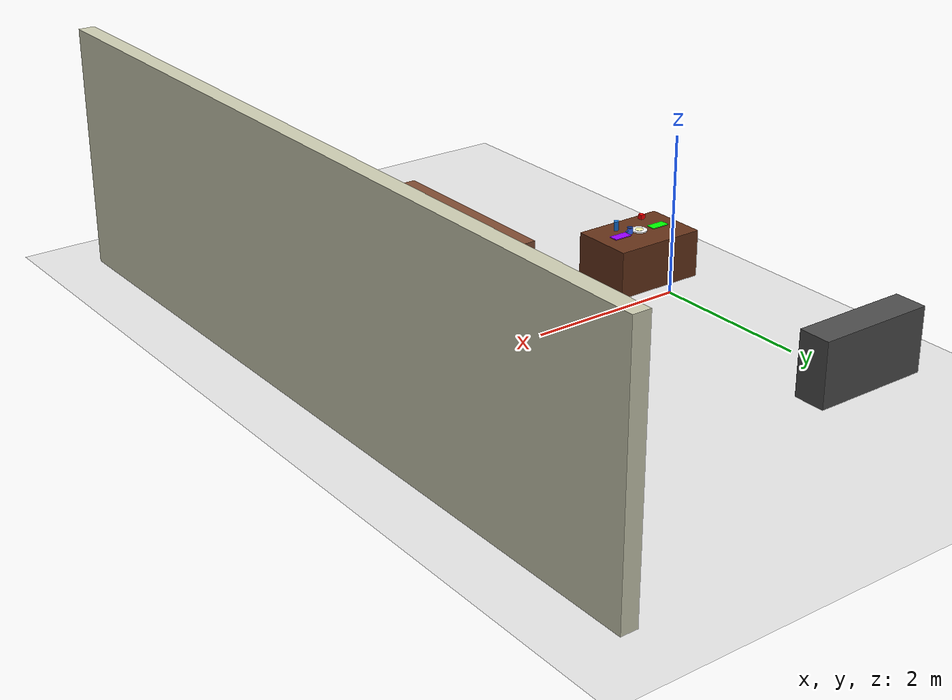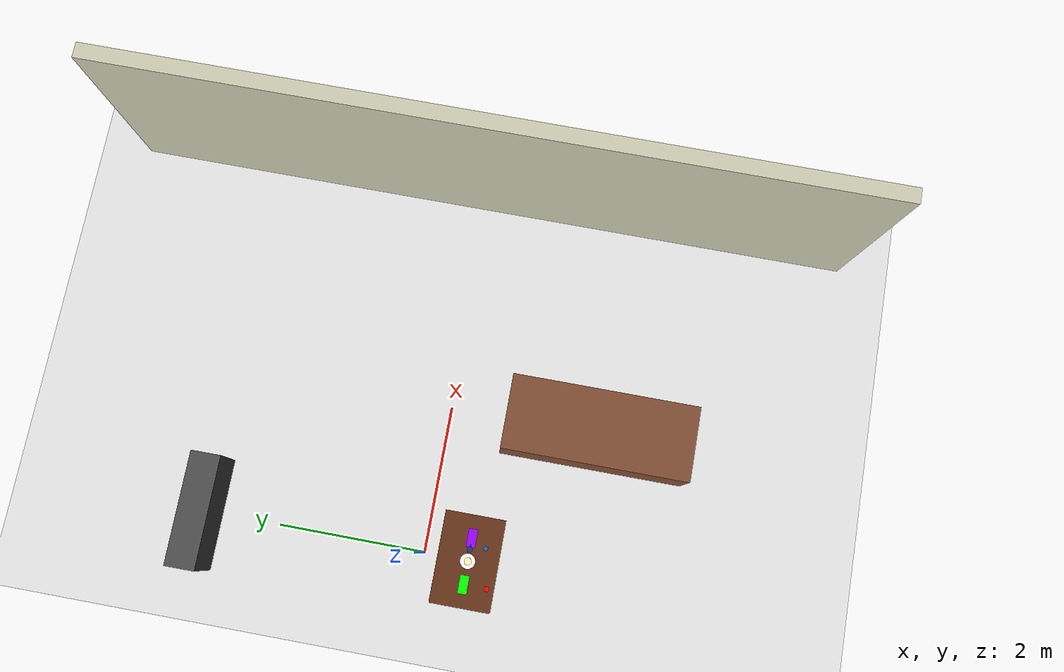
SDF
<?xml version="1.0" ?>
<sdf version="1.7">
  <world name="working_living_room">

    <physics name="1ms" type="ignored">
      <max_step_size>0.001</max_step_size>
      <real_time_factor>1.0</real_time_factor>
    </physics>

    <plugin filename="libgz-sim-physics-system.so" name="gz::sim::systems::Physics"/>
    <plugin filename="libgz-sim-user-commands-system.so" name="gz::sim::systems::UserCommands"/>
    <plugin filename="libgz-sim-scene-broadcaster-system.so" name="gz::sim::systems::SceneBroadcaster"/>

    <light type="directional" name="sun">
      <cast_shadows>true</cast_shadows>
      <pose>0 0 10 0 0 0</pose>
      <diffuse>0.8 0.8 0.8 1</diffuse>
      <specular>0.2 0.2 0.2 1</specular>
      <direction>-0.5 0.1 -0.9</direction>
    </light>

    <!-- 地面 -->
    <model name="ground_plane">
      <static>true</static>
      <link name="link">
        <collision name="collision">
          <geometry>
            <plane>
              <normal>0 0 1</normal>
              <size>20 20</size>
            </plane>
          </geometry>
        </collision>
        <visual name="visual">
          <geometry>
            <plane>
              <normal>0 0 1</normal>
              <size>20 20</size>
            </plane>
          </geometry>
          <material>
            <ambient>0.9 0.9 0.9 1</ambient>
            <diffuse>0.9 0.9 0.9 1</diffuse>
          </material>
        </visual>
      </link>
    </model>

    <!-- 墙壁 -->
    <model name="wall_1">
      <static>true</static>
      <pose>5 0 1.5 0 0 0</pose>
      <link name="wall_link">
        <collision name="wall_collision">
          <geometry>
            <box>
              <size>0.2 10 3</size>
            </box>
          </geometry>
        </collision>
        <visual name="wall_visual">
          <geometry>
            <box>
              <size>0.2 10 3</size>
            </box>
          </geometry>
          <material>
            <ambient>0.8 0.8 0.7 1</ambient>
            <diffuse>0.8 0.8 0.7 1</diffuse>
          </material>
        </visual>
      </link>
    </model>

    <!-- 沙发 -->
    <model name="sofa">
      <static>true</static>
      <pose>2 -2 0.4 0 0 1.57</pose>
      <link name="sofa_link">
        <collision name="sofa_collision">
          <geometry>
            <box>
              <size>2.5 1 0.8</size>
            </box>
          </geometry>
        </collision>
        <visual name="sofa_visual">
          <geometry>
            <box>
              <size>2.5 1 0.8</size>
            </box>
          </geometry>
          <material>
            <ambient>0.5 0.3 0.2 1</ambient>
            <diffuse>0.5 0.3 0.2 1</diffuse>
          </material>
        </visual>
      </link>
    </model>

    <!-- 咖啡桌 -->
    <model name="coffee_table">
      <static>true</static>
      <pose>0 -0.6 0.3 0 0 0</pose>
      <link name="table_link">
        <collision name="table_collision">
          <geometry>
            <box>
              <size>1.2 0.8 0.6</size>
            </box>
          </geometry>
        </collision>
        <visual name="table_visual">
          <geometry>
            <box>
              <size>1.2 0.8 0.6</size>
            </box>
          </geometry>
          <material>
            <ambient>0.4 0.2 0.1 1</ambient>
            <diffuse>0.4 0.2 0.1 1</diffuse>
          </material>
        </visual>
      </link>
    </model>

    <!-- 电视架 -->
    <model name="tv_stand">
      <static>true</static>
      <pose>0 3 0.4 0 0 0</pose>
      <link name="stand_link">
        <collision name="stand_collision">
          <geometry>
            <box>
              <size>1.5 0.4 0.8</size>
            </box>
          </geometry>
        </collision>
        <visual name="stand_visual">
          <geometry>
            <box>
              <size>1.5 0.4 0.8</size>
            </box>
          </geometry>
          <material>
            <ambient>0.3 0.3 0.3 1</ambient>
            <diffuse>0.3 0.3 0.3 1</diffuse>
          </material>
        </visual>
      </link>
    </model>

    <!-- 一些可抓取的物体 -->
    <model name="bottle">
      <pose>0.2 -0.8 0.65 0 0 0</pose>
      <link name="bottle_link">
        <inertial>
          <mass>0.2</mass>
          <inertia>
            <ixx>0.001</ixx>
            <ixy>0</ixy>
            <ixz>0</ixz>
            <iyy>0.001</iyy>
            <iyz>0</iyz>
            <izz>0.0005</izz>
          </inertia>
        </inertial>
        <collision name="bottle_collision">
          <geometry>
            <cylinder>
              <radius>0.03</radius>
              <length>0.15</length>
            </cylinder>
          </geometry>
        </collision>
        <visual name="bottle_visual">
          <geometry>
            <cylinder>
              <radius>0.03</radius>
              <length>0.15</length>
            </cylinder>
          </geometry>
          <material>
            <ambient>0 0.5 1 0.8</ambient>
            <diffuse>0 0.5 1 0.8</diffuse>
          </material>
        </visual>
      </link>
    </model>

    <model name="box">
      <pose>-0.3 -0.9 0.63 0 0 0</pose>
      <link name="box_link">
        <inertial>
          <mass>0.1</mass>
          <inertia>
            <ixx>0.0002</ixx>
            <ixy>0</ixy>
            <ixz>0</ixz>
            <iyy>0.0002</iyy>
            <iyz>0</iyz>
            <izz>0.0002</izz>
          </inertia>
        </inertial>
        <collision name="box_collision">
          <geometry>
            <box>
              <size>0.06 0.06 0.06</size>
            </box>
          </geometry>
        </collision>
        <visual name="box_visual">
          <geometry>
            <box>
              <size>0.06 0.06 0.06</size>
            </box>
          </geometry>
          <material>
            <ambient>1 0 0 1</ambient>
            <diffuse>1 0 0 1</diffuse>
          </material>
        </visual>
      </link>
    </model>

    <!-- 俯视咖啡桌的摄像头 -->
    <model name="over_table_camera">
      <static>true</static>
      <!-- 位置：x=0, y=-0.6, z=1.2，正好在咖啡桌上方，z可根据需要调整高度 -->
      <pose>0 -0.6 2.0 0 1.57 0</pose>
      <link name="camera_link">
        <sensor name="camera_sensor" type="camera">
          <pose>0 0 0 0 0 0</pose>
          <camera>
            <horizontal_fov>1.57</horizontal_fov>
            <image>
              <width>640</width>
              <height>480</height>
              <format>R8G8B8</format>
            </image>
            <clip>
              <near>0.1</near>
              <far>10</far>
            </clip>
          </camera>
          <always_on>1</always_on>
          <update_rate>30</update_rate>
          <visualize>true</visualize>
        </sensor>
      </link>
    </model>

    <!-- 咖啡桌上的绿色长方形区域 -->
    <model name="green_rect_area">
      <static>true</static>
      <pose>-0.3 -0.6 0.61 0 0 0</pose>
      <link name="green_rect_link">
        <visual name="green_rect_visual">
          <geometry>
            <box>
              <size>0.24 0.12 0.01</size>
            </box>
          </geometry>
          <material>
            <ambient>0 1 0 1</ambient>
            <diffuse>0 1 0 1</diffuse>
          </material>
        </visual>
      </link>
    </model>

    <!-- 咖啡桌上的紫色长方形区域 -->
    <model name="purple_rect_area">
      <static>true</static>
      <pose>0.3 -0.6 0.61 0 0 0</pose>
      <link name="purple_rect_link">
        <visual name="purple_rect_visual">
          <geometry>
            <box>
              <size>0.24 0.12 0.01</size>
            </box>
          </geometry>
          <material>
            <ambient>0.6 0 1 1</ambient>
            <diffuse>0.6 0 1 1</diffuse>
          </material>
        </visual>
      </link>
    </model>

    <!-- 咖啡桌上的盘子（白色盘体+浅黄色中心） -->
    <model name="plate">
      <static>true</static>
      <pose>0.0 -0.6 0.62 0 0 0</pose>
      <link name="plate_link">
        <!-- 盘子主体 -->
        <visual name="plate_visual">
          <geometry>
            <cylinder>
              <radius>0.10</radius>
              <length>0.015</length>
            </cylinder>
          </geometry>
          <material>
            <ambient>1 1 1 1</ambient>
            <diffuse>1 1 1 1</diffuse>
          </material>
        </visual>
        <!-- 盘子中心 -->
        <visual name="plate_center">
          <pose>0 0 0.008 0 0 0</pose>
          <geometry>
            <cylinder>
              <radius>0.05</radius>
              <length>0.005</length>
            </cylinder>
          </geometry>
          <material>
            <ambient>1 1 0.7 1</ambient>
            <diffuse>1 1 0.7 1</diffuse>
          </material>
        </visual>
      </link>
    </model>

    <!-- 咖啡桌上的蓝色杯子（带把手） -->
    <model name="cup">
      <static>true</static>
      <pose>0.15 -0.6 0.65 0 0 0</pose>
      <link name="cup_link">
        <!-- 杯身 -->
        <visual name="cup_body">
          <geometry>
            <cylinder>
              <radius>0.035</radius>
              <length>0.08</length>
            </cylinder>
          </geometry>
          <material>
            <ambient>0.2 0.4 1 1</ambient>
            <diffuse>0.2 0.4 1 1</diffuse>
          </material>
        </visual>
        <!-- 杯口加深色 -->
        <visual name="cup_top">
          <pose>0 0 0.04 0 0 0</pose>
          <geometry>
            <cylinder>
              <radius>0.037</radius>
              <length>0.005</length>
            </cylinder>
          </geometry>
          <material>
            <ambient>0.1 0.2 0.5 1</ambient>
            <diffuse>0.1 0.2 0.5 1</diffuse>
          </material>
        </visual>
        <!-- 把手（细长圆柱体） -->
        <visual name="cup_handle">
          <pose>0.045 0 0 0 1.5708 0</pose>
          <geometry>
            <cylinder>
              <radius>0.008</radius>
              <length>0.045</length>
            </cylinder>
          </geometry>
          <material>
            <ambient>0.2 0.4 1 1</ambient>
            <diffuse>0.2 0.4 1 1</diffuse>
          </material>
        </visual>
      </link>
    </model>

  </world>
</sdf>
